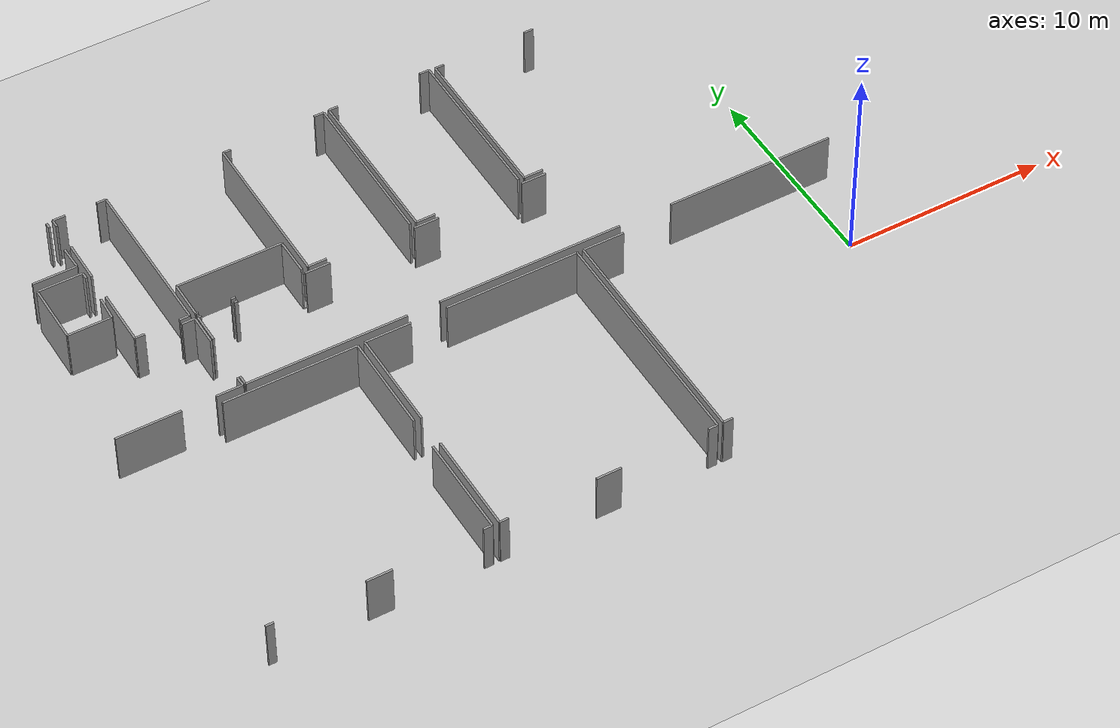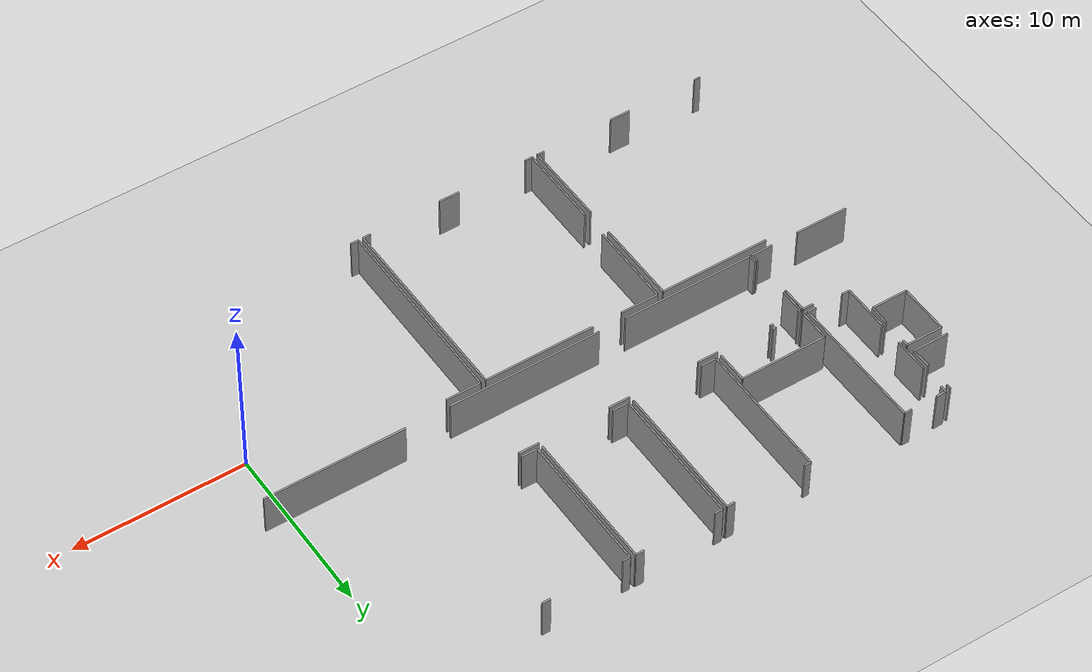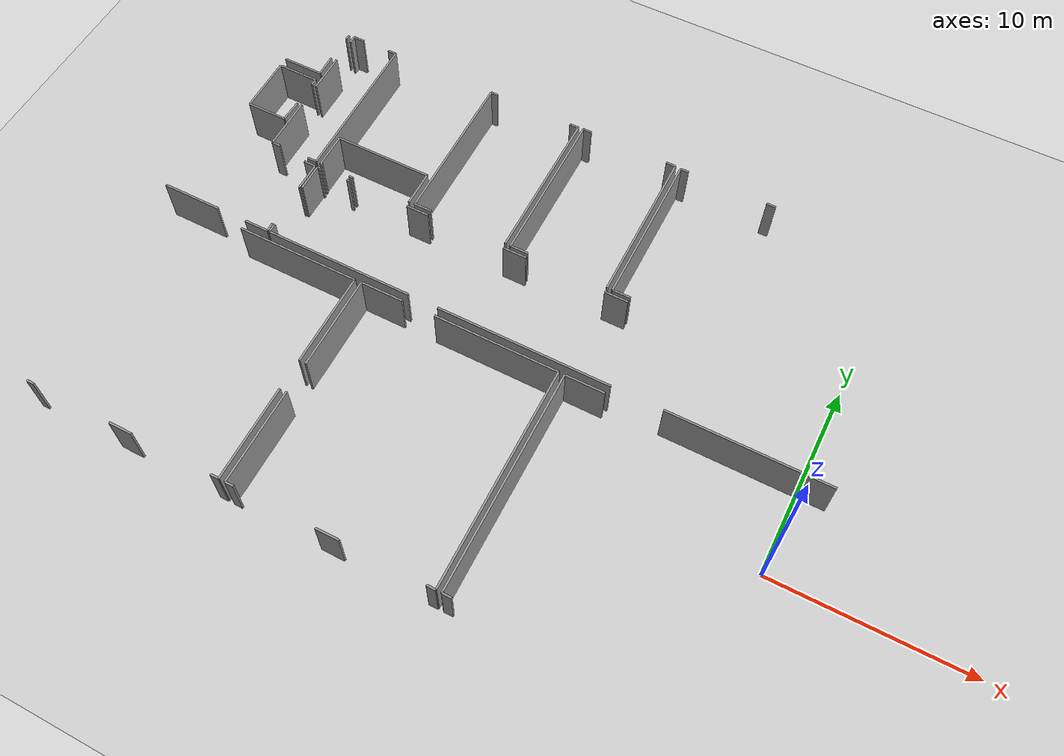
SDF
<sdf version="1.6">
 <world name="default">
  <model name="ground_plane">
   <static>1</static>
   <link name="link">
    <collision name="collision">
     <geometry><plane><normal>0 0 1</normal><size>100 100</size></plane></geometry>
     <surface><friction><ode><mu>100</mu><mu2>50</mu2></ode></friction></surface>
    </collision>
    <visual name="visual">
     <cast_shadows>0</cast_shadows>
     <geometry><plane><normal>0 0 1</normal><size>100 100</size></plane></geometry>
     <material>
      <script><uri>file://media/materials/scripts/gazebo.material</uri><name>Gazebo/Grey</name></script>
     </material>
    </visual>
   </link>
  </model>
  <model name="50037765_PLAN3">
   <static>1</static>
   <link name="Wall_129">
    <collision name="Wall_129_Collision">
     <geometry><box><size>1.28106552116 0.1 2.5</size></box></geometry>
     <pose>0.640532760582 0 1.25 0 0 0</pose>
    </collision>
    <visual name="Wall_129_Visual">
     <pose>0.640532760582 0 1.25 0 0 0</pose>
     <geometry><box><size>1.28106552116 0.1 2.5</size></box></geometry>
     <material>
      <script><uri>file://media/materials/scripts/gazebo.material</uri><name>Gazebo/Grey</name></script>
      <ambient>1 1 1 1</ambient>
     </material>
    </visual>
    <pose>107.835037396 -16.9816164556 0 0 0 3.14159265359</pose>
   </link>
   <link name="Wall_130">
    <collision name="Wall_130_Collision">
     <geometry><box><size>3.10988822449 0.1 2.5</size></box></geometry>
     <pose>1.55494411225 0 1.25 0 0 0</pose>
    </collision>
    <visual name="Wall_130_Visual">
     <pose>1.55494411225 0 1.25 0 0 0</pose>
     <geometry><box><size>3.10988822449 0.1 2.5</size></box></geometry>
     <material>
      <script><uri>file://media/materials/scripts/gazebo.material</uri><name>Gazebo/Grey</name></script>
      <ambient>1 1 1 1</ambient>
     </material>
    </visual>
    <pose>104.94043935 -16.9816164556 0 0 0 3.14159265359</pose>
   </link>
   <link name="Wall_132">
    <collision name="Wall_132_Collision">
     <geometry><box><size>0.639516041914 0.1 2.5</size></box></geometry>
     <pose>0.319758020957 0 1.25 0 0 0</pose>
    </collision>
    <visual name="Wall_132_Visual">
     <pose>0.319758020957 0 1.25 0 0 0</pose>
     <geometry><box><size>0.639516041914 0.1 2.5</size></box></geometry>
     <material>
      <script><uri>file://media/materials/scripts/gazebo.material</uri><name>Gazebo/Grey</name></script>
      <ambient>1 1 1 1</ambient>
     </material>
    </visual>
    <pose>107.173407723 -12.5498160375 0 0 0 0.0</pose>
   </link>
   <link name="Wall_133">
    <collision name="Wall_133_Collision">
     <geometry><box><size>1.51142855327 0.1 2.5</size></box></geometry>
     <pose>0.755714276636 0 1.25 0 0 0</pose>
    </collision>
    <visual name="Wall_133_Visual">
     <pose>0.755714276636 0 1.25 0 0 0</pose>
     <geometry><box><size>1.51142855327 0.1 2.5</size></box></geometry>
     <material>
      <script><uri>file://media/materials/scripts/gazebo.material</uri><name>Gazebo/Grey</name></script>
      <ambient>1 1 1 1</ambient>
     </material>
    </visual>
    <pose>107.812923765 -12.5498160375 0 0 0 -1.57079632679</pose>
   </link>
   <link name="Wall_134">
    <collision name="Wall_134_Collision">
     <geometry><box><size>0.487002205635 0.1 2.5</size></box></geometry>
     <pose>0.243501102817 0 1.25 0 0 0</pose>
    </collision>
    <visual name="Wall_134_Visual">
     <pose>0.243501102817 0 1.25 0 0 0</pose>
     <geometry><box><size>0.487002205635 0.1 2.5</size></box></geometry>
     <material>
      <script><uri>file://media/materials/scripts/gazebo.material</uri><name>Gazebo/Grey</name></script>
      <ambient>1 1 1 1</ambient>
     </material>
    </visual>
    <pose>107.812923765 -16.4951165731 0 0 0 -1.52537304737</pose>
   </link>
   <link name="Wall_135">
    <collision name="Wall_135_Collision">
     <geometry><box><size>0.501750662456 0.1 2.5</size></box></geometry>
     <pose>0.250875331228 0 1.25 0 0 0</pose>
    </collision>
    <visual name="Wall_135_Visual">
     <pose>0.250875331228 0 1.25 0 0 0</pose>
     <geometry><box><size>0.501750662456 0.1 2.5</size></box></geometry>
     <material>
      <script><uri>file://media/materials/scripts/gazebo.material</uri><name>Gazebo/Grey</name></script>
      <ambient>1 1 1 1</ambient>
     </material>
    </visual>
    <pose>107.700576352 -12.2788859305 0 0 0 3.14159265359</pose>
   </link>
   <link name="Wall_136">
    <collision name="Wall_136_Collision">
     <geometry><box><size>0.464894610756 0.1 2.5</size></box></geometry>
     <pose>0.232447305378 0 1.25 0 0 0</pose>
    </collision>
    <visual name="Wall_136_Visual">
     <pose>0.232447305378 0 1.25 0 0 0</pose>
     <geometry><box><size>0.464894610756 0.1 2.5</size></box></geometry>
     <material>
      <script><uri>file://media/materials/scripts/gazebo.material</uri><name>Gazebo/Grey</name></script>
      <ambient>1 1 1 1</ambient>
     </material>
    </visual>
    <pose>105.545641136 -12.2788859305 0 0 0 3.14159265359</pose>
   </link>
   <link name="Wall_137">
    <collision name="Wall_137_Collision">
     <geometry><box><size>2.79549339451 0.1 2.5</size></box></geometry>
     <pose>1.39774669725 0 1.25 0 0 0</pose>
    </collision>
    <visual name="Wall_137_Visual">
     <pose>1.39774669725 0 1.25 0 0 0</pose>
     <geometry><box><size>2.79549339451 0.1 2.5</size></box></geometry>
     <material>
      <script><uri>file://media/materials/scripts/gazebo.material</uri><name>Gazebo/Grey</name></script>
      <ambient>1 1 1 1</ambient>
     </material>
    </visual>
    <pose>105.080746526 -12.2788859305 0 0 0 1.57079632679</pose>
   </link>
   <link name="Wall_138">
    <collision name="Wall_138_Collision">
     <geometry><box><size>2.06365929757 0.1 2.5</size></box></geometry>
     <pose>1.03182964879 0 1.25 0 0 0</pose>
    </collision>
    <visual name="Wall_138_Visual">
     <pose>1.03182964879 0 1.25 0 0 0</pose>
     <geometry><box><size>2.06365929757 0.1 2.5</size></box></geometry>
     <material>
      <script><uri>file://media/materials/scripts/gazebo.material</uri><name>Gazebo/Grey</name></script>
      <ambient>1 1 1 1</ambient>
     </material>
    </visual>
    <pose>105.080746526 -8.08825118035 0 0 0 1.57079632679</pose>
   </link>
   <link name="Wall_139">
    <collision name="Wall_139_Collision">
     <geometry><box><size>0.404399850034 0.1 2.5</size></box></geometry>
     <pose>0.202199925017 0 1.25 0 0 0</pose>
    </collision>
    <visual name="Wall_139_Visual">
     <pose>0.202199925017 0 1.25 0 0 0</pose>
     <geometry><box><size>0.404399850034 0.1 2.5</size></box></geometry>
     <material>
      <script><uri>file://media/materials/scripts/gazebo.material</uri><name>Gazebo/Grey</name></script>
      <ambient>1 1 1 1</ambient>
     </material>
    </visual>
    <pose>105.080746526 -4.59722054534 0 0 0 1.57079632679</pose>
   </link>
   <link name="Wall_140">
    <collision name="Wall_140_Collision">
     <geometry><box><size>0.593255342539 0.1 2.5</size></box></geometry>
     <pose>0.296627671269 0 1.25 0 0 0</pose>
    </collision>
    <visual name="Wall_140_Visual">
     <pose>0.296627671269 0 1.25 0 0 0</pose>
     <geometry><box><size>0.593255342539 0.1 2.5</size></box></geometry>
     <material>
      <script><uri>file://media/materials/scripts/gazebo.material</uri><name>Gazebo/Grey</name></script>
      <ambient>1 1 1 1</ambient>
     </material>
    </visual>
    <pose>105.080746526 -4.19282069531 0 0 0 0.0</pose>
   </link>
   <link name="Wall_141">
    <collision name="Wall_141_Collision">
     <geometry><box><size>0.457015041082 0.1 2.5</size></box></geometry>
     <pose>0.228507520541 0 1.25 0 0 0</pose>
    </collision>
    <visual name="Wall_141_Visual">
     <pose>0.228507520541 0 1.25 0 0 0</pose>
     <geometry><box><size>0.457015041082 0.1 2.5</size></box></geometry>
     <material>
      <script><uri>file://media/materials/scripts/gazebo.material</uri><name>Gazebo/Grey</name></script>
      <ambient>1 1 1 1</ambient>
     </material>
    </visual>
    <pose>107.19882569 -4.19282069531 0 0 0 0.0</pose>
   </link>
   <link name="Wall_142">
    <collision name="Wall_142_Collision">
     <geometry><box><size>8.0861889827 0.1 2.5</size></box></geometry>
     <pose>4.04309449135 0 1.25 0 0 0</pose>
    </collision>
    <visual name="Wall_142_Visual">
     <pose>4.04309449135 0 1.25 0 0 0</pose>
     <geometry><box><size>8.0861889827 0.1 2.5</size></box></geometry>
     <material>
      <script><uri>file://media/materials/scripts/gazebo.material</uri><name>Gazebo/Grey</name></script>
      <ambient>1 1 1 1</ambient>
     </material>
    </visual>
    <pose>107.655840731 -4.19282069531 0 0 0 -1.56526394935</pose>
   </link>
   <link name="Wall_143">
    <collision name="Wall_143_Collision">
     <geometry><box><size>2.13104232727 0.1 2.5</size></box></geometry>
     <pose>1.06552116363 0 1.25 0 0 0</pose>
    </collision>
    <visual name="Wall_143_Visual">
     <pose>1.06552116363 0 1.25 0 0 0</pose>
     <geometry><box><size>2.13104232727 0.1 2.5</size></box></geometry>
     <material>
      <script><uri>file://media/materials/scripts/gazebo.material</uri><name>Gazebo/Grey</name></script>
      <ambient>1 1 1 1</ambient>
     </material>
    </visual>
    <pose>104.795811119 -7.21443232149 0 0 0 3.14159265359</pose>
   </link>
   <link name="Wall_146">
    <collision name="Wall_146_Collision">
     <geometry><box><size>0.286663828327 0.1 2.5</size></box></geometry>
     <pose>0.143331914164 0 1.25 0 0 0</pose>
    </collision>
    <visual name="Wall_146_Visual">
     <pose>0.143331914164 0 1.25 0 0 0</pose>
     <geometry><box><size>0.286663828327 0.1 2.5</size></box></geometry>
     <material>
      <script><uri>file://media/materials/scripts/gazebo.material</uri><name>Gazebo/Grey</name></script>
      <ambient>1 1 1 1</ambient>
     </material>
    </visual>
    <pose>104.767088817 -4.22355101704 0 0 0 -1.57079632679</pose>
   </link>
   <link name="Wall_147">
    <collision name="Wall_147_Collision">
     <geometry><box><size>1.16373483897 0.1 2.5</size></box></geometry>
     <pose>0.581867419483 0 1.25 0 0 0</pose>
    </collision>
    <visual name="Wall_147_Visual">
     <pose>0.581867419483 0 1.25 0 0 0</pose>
     <geometry><box><size>1.16373483897 0.1 2.5</size></box></geometry>
     <material>
      <script><uri>file://media/materials/scripts/gazebo.material</uri><name>Gazebo/Grey</name></script>
      <ambient>1 1 1 1</ambient>
     </material>
    </visual>
    <pose>104.767088817 -6.0510519861 0 0 0 -1.54611268043</pose>
   </link>
   <link name="Wall_148">
    <collision name="Wall_148_Collision">
     <geometry><box><size>2.11197885225 0.1 2.5</size></box></geometry>
     <pose>1.05598942613 0 1.25 0 0 0</pose>
    </collision>
    <visual name="Wall_148_Visual">
     <pose>1.05598942613 0 1.25 0 0 0</pose>
     <geometry><box><size>2.11197885225 0.1 2.5</size></box></geometry>
     <material>
      <script><uri>file://media/materials/scripts/gazebo.material</uri><name>Gazebo/Grey</name></script>
      <ambient>1 1 1 1</ambient>
     </material>
    </visual>
    <pose>104.776747644 -10.6830951458 0 0 0 3.14159265359</pose>
   </link>
   <link name="Wall_149">
    <collision name="Wall_149_Collision">
     <geometry><box><size>2.96220983802 0.1 2.5</size></box></geometry>
     <pose>1.48110491901 0 1.25 0 0 0</pose>
    </collision>
    <visual name="Wall_149_Visual">
     <pose>1.48110491901 0 1.25 0 0 0</pose>
     <geometry><box><size>2.96220983802 0.1 2.5</size></box></geometry>
     <material>
      <script><uri>file://media/materials/scripts/gazebo.material</uri><name>Gazebo/Grey</name></script>
      <ambient>1 1 1 1</ambient>
     </material>
    </visual>
    <pose>102.664768792 -10.6830951458 0 0 0 1.57079632679</pose>
   </link>
   <link name="Wall_150">
    <collision name="Wall_150_Collision">
     <geometry><box><size>2.1691692773 0.1 2.5</size></box></geometry>
     <pose>1.08458463865 0 1.25 0 0 0</pose>
    </collision>
    <visual name="Wall_150_Visual">
     <pose>1.08458463865 0 1.25 0 0 0</pose>
     <geometry><box><size>2.1691692773 0.1 2.5</size></box></geometry>
     <material>
      <script><uri>file://media/materials/scripts/gazebo.material</uri><name>Gazebo/Grey</name></script>
      <ambient>1 1 1 1</ambient>
     </material>
    </visual>
    <pose>102.664768792 -7.72088530778 0 0 0 0.0</pose>
   </link>
   <link name="Wall_151">
    <collision name="Wall_151_Collision">
     <geometry><box><size>0.353563916654 0.1 2.5</size></box></geometry>
     <pose>0.176781958327 0 1.25 0 0 0</pose>
    </collision>
    <visual name="Wall_151_Visual">
     <pose>0.176781958327 0 1.25 0 0 0</pose>
     <geometry><box><size>0.353563916654 0.1 2.5</size></box></geometry>
     <material>
      <script><uri>file://media/materials/scripts/gazebo.material</uri><name>Gazebo/Grey</name></script>
      <ambient>1 1 1 1</ambient>
     </material>
    </visual>
    <pose>104.833938069 -7.72088530778 0 0 0 -1.57079632679</pose>
   </link>
   <link name="Wall_152">
    <collision name="Wall_152_Collision">
     <geometry><box><size>1.18291206941 0.1 2.5</size></box></geometry>
     <pose>0.591456034703 0 1.25 0 0 0</pose>
    </collision>
    <visual name="Wall_152_Visual">
     <pose>0.591456034703 0 1.25 0 0 0</pose>
     <geometry><box><size>1.18291206941 0.1 2.5</size></box></geometry>
     <material>
      <script><uri>file://media/materials/scripts/gazebo.material</uri><name>Gazebo/Grey</name></script>
      <ambient>1 1 1 1</ambient>
     </material>
    </visual>
    <pose>104.833938069 -9.5015663822 0 0 0 -1.61916232958</pose>
   </link>
   <link name="Wall_153">
    <collision name="Wall_153_Collision">
     <geometry><box><size>0.428038559055 0.1 2.5</size></box></geometry>
     <pose>0.214019279528 0 1.25 0 0 0</pose>
    </collision>
    <visual name="Wall_153_Visual">
     <pose>0.214019279528 0 1.25 0 0 0</pose>
     <geometry><box><size>0.428038559055 0.1 2.5</size></box></geometry>
     <material>
      <script><uri>file://media/materials/scripts/gazebo.material</uri><name>Gazebo/Grey</name></script>
      <ambient>1 1 1 1</ambient>
     </material>
    </visual>
    <pose>113.094268884 -28.9847428655 0 0 0 3.14159265359</pose>
   </link>
   <link name="Wall_154">
    <collision name="Wall_154_Collision">
     <geometry><box><size>1.21294537044 0.1 2.5</size></box></geometry>
     <pose>0.606472685218 0 1.25 0 0 0</pose>
    </collision>
    <visual name="Wall_154_Visual">
     <pose>0.606472685218 0 1.25 0 0 0</pose>
     <geometry><box><size>1.21294537044 0.1 2.5</size></box></geometry>
     <material>
      <script><uri>file://media/materials/scripts/gazebo.material</uri><name>Gazebo/Grey</name></script>
      <ambient>1 1 1 1</ambient>
     </material>
    </visual>
    <pose>108.445068597 -28.9847428655 0 0 0 3.14159265359</pose>
   </link>
   <link name="Wall_155">
    <collision name="Wall_155_Collision">
     <geometry><box><size>0.373898290006 0.1 2.5</size></box></geometry>
     <pose>0.186949145003 0 1.25 0 0 0</pose>
    </collision>
    <visual name="Wall_155_Visual">
     <pose>0.186949145003 0 1.25 0 0 0</pose>
     <geometry><box><size>0.373898290006 0.1 2.5</size></box></geometry>
     <material>
      <script><uri>file://media/materials/scripts/gazebo.material</uri><name>Gazebo/Grey</name></script>
      <ambient>1 1 1 1</ambient>
     </material>
    </visual>
    <pose>103.019349427 -28.9847428655 0 0 0 3.14159265359</pose>
   </link>
   <link name="Wall_158">
    <collision name="Wall_158_Collision">
     <geometry><box><size>6.4615013122 0.1 2.5</size></box></geometry>
     <pose>3.2307506561 0 1.25 0 0 0</pose>
    </collision>
    <visual name="Wall_158_Visual">
     <pose>3.2307506561 0 1.25 0 0 0</pose>
     <geometry><box><size>6.4615013122 0.1 2.5</size></box></geometry>
     <material>
      <script><uri>file://media/materials/scripts/gazebo.material</uri><name>Gazebo/Grey</name></script>
      <ambient>1 1 1 1</ambient>
     </material>
    </visual>
    <pose>106.61090812 -17.4485445037 0 0 0 0.0</pose>
   </link>
   <link name="Wall_159">
    <collision name="Wall_159_Collision">
     <geometry><box><size>4.94379452116 0.1 2.5</size></box></geometry>
     <pose>2.47189726058 0 1.25 0 0 0</pose>
    </collision>
    <visual name="Wall_159_Visual">
     <pose>2.47189726058 0 1.25 0 0 0</pose>
     <geometry><box><size>4.94379452116 0.1 2.5</size></box></geometry>
     <material>
      <script><uri>file://media/materials/scripts/gazebo.material</uri><name>Gazebo/Grey</name></script>
      <ambient>1 1 1 1</ambient>
     </material>
    </visual>
    <pose>113.072409433 -17.4485445037 0 0 0 -1.57079632679</pose>
   </link>
   <link name="Wall_160">
    <collision name="Wall_160_Collision">
     <geometry><box><size>4.9547724668 0.1 2.5</size></box></geometry>
     <pose>2.4773862334 0 1.25 0 0 0</pose>
    </collision>
    <visual name="Wall_160_Visual">
     <pose>2.4773862334 0 1.25 0 0 0</pose>
     <geometry><box><size>4.9547724668 0.1 2.5</size></box></geometry>
     <material>
      <script><uri>file://media/materials/scripts/gazebo.material</uri><name>Gazebo/Grey</name></script>
      <ambient>1 1 1 1</ambient>
     </material>
    </visual>
    <pose>113.072409433 -24.0300186187 0 0 0 -1.56638451527</pose>
   </link>
   <link name="Wall_170">
    <collision name="Wall_170_Collision">
     <geometry><box><size>1.22082494011 0.1 2.5</size></box></geometry>
     <pose>0.610412470054 0 1.25 0 0 0</pose>
    </collision>
    <visual name="Wall_170_Visual">
     <pose>0.610412470054 0 1.25 0 0 0</pose>
     <geometry><box><size>1.22082494011 0.1 2.5</size></box></geometry>
     <material>
      <script><uri>file://media/materials/scripts/gazebo.material</uri><name>Gazebo/Grey</name></script>
      <ambient>1 1 1 1</ambient>
     </material>
    </visual>
    <pose>125.136030603 -12.5559926034 0 0 0 3.14159265359</pose>
   </link>
   <link name="Wall_171">
    <collision name="Wall_171_Collision">
     <geometry><box><size>1.22997540812 0.1 2.5</size></box></geometry>
     <pose>0.614987704059 0 1.25 0 0 0</pose>
    </collision>
    <visual name="Wall_171_Visual">
     <pose>0.614987704059 0 1.25 0 0 0</pose>
     <geometry><box><size>1.22997540812 0.1 2.5</size></box></geometry>
     <material>
      <script><uri>file://media/materials/scripts/gazebo.material</uri><name>Gazebo/Grey</name></script>
      <ambient>1 1 1 1</ambient>
     </material>
    </visual>
    <pose>119.732425065 -12.5559926034 0 0 0 3.14159265359</pose>
   </link>
   <link name="Wall_172">
    <collision name="Wall_172_Collision">
     <geometry><box><size>1.2063366991 0.1 2.5</size></box></geometry>
     <pose>0.603168349548 0 1.25 0 0 0</pose>
    </collision>
    <visual name="Wall_172_Visual">
     <pose>0.603168349548 0 1.25 0 0 0</pose>
     <geometry><box><size>1.2063366991 0.1 2.5</size></box></geometry>
     <material>
      <script><uri>file://media/materials/scripts/gazebo.material</uri><name>Gazebo/Grey</name></script>
      <ambient>1 1 1 1</ambient>
     </material>
    </visual>
    <pose>114.338224174 -12.5559926034 0 0 0 3.14159265359</pose>
   </link>
   <link name="Wall_173">
    <collision name="Wall_173_Collision">
     <geometry><box><size>0.176909048161 0.1 2.5</size></box></geometry>
     <pose>0.0884545240803 0 1.25 0 0 0</pose>
    </collision>
    <visual name="Wall_173_Visual">
     <pose>0.0884545240803 0 1.25 0 0 0</pose>
     <geometry><box><size>0.176909048161 0.1 2.5</size></box></geometry>
     <material>
      <script><uri>file://media/materials/scripts/gazebo.material</uri><name>Gazebo/Grey</name></script>
      <ambient>1 1 1 1</ambient>
     </material>
    </visual>
    <pose>109.857036646 -12.5559926034 0 0 0 3.14159265359</pose>
   </link>
   <link name="Wall_174">
    <collision name="Wall_174_Collision">
     <geometry><box><size>0.151745261138 0.1 2.5</size></box></geometry>
     <pose>0.0758726305689 0 1.25 0 0 0</pose>
    </collision>
    <visual name="Wall_174_Visual">
     <pose>0.0758726305689 0 1.25 0 0 0</pose>
     <geometry><box><size>0.151745261138 0.1 2.5</size></box></geometry>
     <material>
      <script><uri>file://media/materials/scripts/gazebo.material</uri><name>Gazebo/Grey</name></script>
      <ambient>1 1 1 1</ambient>
     </material>
    </visual>
    <pose>108.100400968 -12.5559926034 0 0 0 3.14159265359</pose>
   </link>
   <link name="Wall_175">
    <collision name="Wall_175_Collision">
     <geometry><box><size>1.45596654996 0.1 2.5</size></box></geometry>
     <pose>0.727983274978 0 1.25 0 0 0</pose>
    </collision>
    <visual name="Wall_175_Visual">
     <pose>0.727983274978 0 1.25 0 0 0</pose>
     <geometry><box><size>1.45596654996 0.1 2.5</size></box></geometry>
     <material>
      <script><uri>file://media/materials/scripts/gazebo.material</uri><name>Gazebo/Grey</name></script>
      <ambient>1 1 1 1</ambient>
     </material>
    </visual>
    <pose>107.948655707 -12.5559926034 0 0 0 -1.57079632679</pose>
   </link>
   <link name="Wall_176">
    <collision name="Wall_176_Collision">
     <geometry><box><size>0.479637031436 0.1 2.5</size></box></geometry>
     <pose>0.239818515718 0 1.25 0 0 0</pose>
    </collision>
    <visual name="Wall_176_Visual">
     <pose>0.239818515718 0 1.25 0 0 0</pose>
     <geometry><box><size>0.479637031436 0.1 2.5</size></box></geometry>
     <material>
      <script><uri>file://media/materials/scripts/gazebo.material</uri><name>Gazebo/Grey</name></script>
      <ambient>1 1 1 1</ambient>
     </material>
    </visual>
    <pose>107.948655707 -16.5027419632 0 0 0 -1.57079632679</pose>
   </link>
   <link name="Wall_177">
    <collision name="Wall_177_Collision">
     <geometry><box><size>7.7845064784 0.1 2.5</size></box></geometry>
     <pose>3.8922532392 0 1.25 0 0 0</pose>
    </collision>
    <visual name="Wall_177_Visual">
     <pose>3.8922532392 0 1.25 0 0 0</pose>
     <geometry><box><size>7.7845064784 0.1 2.5</size></box></geometry>
     <material>
      <script><uri>file://media/materials/scripts/gazebo.material</uri><name>Gazebo/Grey</name></script>
      <ambient>1 1 1 1</ambient>
     </material>
    </visual>
    <pose>107.948655707 -16.9823789946 0 0 0 0.0</pose>
   </link>
   <link name="Wall_178">
    <collision name="Wall_178_Collision">
     <geometry><box><size>8.98118435016 0.1 2.5</size></box></geometry>
     <pose>4.49059217508 0 1.25 0 0 0</pose>
    </collision>
    <visual name="Wall_178_Visual">
     <pose>4.49059217508 0 1.25 0 0 0</pose>
     <geometry><box><size>8.98118435016 0.1 2.5</size></box></geometry>
     <material>
      <script><uri>file://media/materials/scripts/gazebo.material</uri><name>Gazebo/Grey</name></script>
      <ambient>1 1 1 1</ambient>
     </material>
    </visual>
    <pose>117.33195229 -16.9823789946 0 0 0 0.0</pose>
   </link>
   <link name="Wall_179">
    <collision name="Wall_179_Collision">
     <geometry><box><size>8.21788281046 0.1 2.5</size></box></geometry>
     <pose>4.10894140523 0 1.25 0 0 0</pose>
    </collision>
    <visual name="Wall_179_Visual">
     <pose>4.10894140523 0 1.25 0 0 0</pose>
     <geometry><box><size>8.21788281046 0.1 2.5</size></box></geometry>
     <material>
      <script><uri>file://media/materials/scripts/gazebo.material</uri><name>Gazebo/Grey</name></script>
      <ambient>1 1 1 1</ambient>
     </material>
    </visual>
    <pose>128.932966467 -16.9823789946 0 0 0 0.0</pose>
   </link>
   <link name="Wall_184">
    <collision name="Wall_184_Collision">
     <geometry><box><size>0.210206584524 0.1 2.5</size></box></geometry>
     <pose>0.105103292262 0 1.25 0 0 0</pose>
    </collision>
    <visual name="Wall_184_Visual">
     <pose>0.105103292262 0 1.25 0 0 0</pose>
     <geometry><box><size>0.210206584524 0.1 2.5</size></box></geometry>
     <material>
      <script><uri>file://media/materials/scripts/gazebo.material</uri><name>Gazebo/Grey</name></script>
      <ambient>1 1 1 1</ambient>
     </material>
    </visual>
    <pose>109.86974563 -12.3059306471 0 0 0 3.14159265359</pose>
   </link>
   <link name="Wall_185">
    <collision name="Wall_185_Collision">
     <geometry><box><size>0.108026358431 0.1 2.5</size></box></geometry>
     <pose>0.0540131792157 0 1.25 0 0 0</pose>
    </collision>
    <visual name="Wall_185_Visual">
     <pose>0.0540131792157 0 1.25 0 0 0</pose>
     <geometry><box><size>0.108026358431 0.1 2.5</size></box></geometry>
     <material>
      <script><uri>file://media/materials/scripts/gazebo.material</uri><name>Gazebo/Grey</name></script>
      <ambient>1 1 1 1</ambient>
     </material>
    </visual>
    <pose>108.079558236 -12.3059306471 0 0 0 3.14159265359</pose>
   </link>
   <link name="Wall_186">
    <collision name="Wall_186_Collision">
     <geometry><box><size>1.85007212348 0.1 2.5</size></box></geometry>
     <pose>0.92503606174 0 1.25 0 0 0</pose>
    </collision>
    <visual name="Wall_186_Visual">
     <pose>0.92503606174 0 1.25 0 0 0</pose>
     <geometry><box><size>1.85007212348 0.1 2.5</size></box></geometry>
     <material>
      <script><uri>file://media/materials/scripts/gazebo.material</uri><name>Gazebo/Grey</name></script>
      <ambient>1 1 1 1</ambient>
     </material>
    </visual>
    <pose>107.971531877 -12.3059306471 0 0 0 1.57079632679</pose>
   </link>
   <link name="Wall_187">
    <collision name="Wall_187_Collision">
     <geometry><box><size>5.12070356932 0.1 2.5</size></box></geometry>
     <pose>2.56035178466 0 1.25 0 0 0</pose>
    </collision>
    <visual name="Wall_187_Visual">
     <pose>2.56035178466 0 1.25 0 0 0</pose>
     <geometry><box><size>5.12070356932 0.1 2.5</size></box></geometry>
     <material>
      <script><uri>file://media/materials/scripts/gazebo.material</uri><name>Gazebo/Grey</name></script>
      <ambient>1 1 1 1</ambient>
     </material>
    </visual>
    <pose>107.971531877 -10.4558585236 0 0 0 0.0</pose>
   </link>
   <link name="Wall_188">
    <collision name="Wall_188_Collision">
     <geometry><box><size>1.85011404627 0.1 2.5</size></box></geometry>
     <pose>0.925057023136 0 1.25 0 0 0</pose>
    </collision>
    <visual name="Wall_188_Visual">
     <pose>0.925057023136 0 1.25 0 0 0</pose>
     <geometry><box><size>1.85011404627 0.1 2.5</size></box></geometry>
     <material>
      <script><uri>file://media/materials/scripts/gazebo.material</uri><name>Gazebo/Grey</name></script>
      <ambient>1 1 1 1</ambient>
     </material>
    </visual>
    <pose>113.092235447 -10.4558585236 0 0 0 -1.56406436463</pose>
   </link>
   <link name="Wall_189">
    <collision name="Wall_189_Collision">
     <geometry><box><size>0.900812739485 0.1 2.5</size></box></geometry>
     <pose>0.450406369742 0 1.25 0 0 0</pose>
    </collision>
    <visual name="Wall_189_Visual">
     <pose>0.450406369742 0 1.25 0 0 0</pose>
     <geometry><box><size>0.900812739485 0.1 2.5</size></box></geometry>
     <material>
      <script><uri>file://media/materials/scripts/gazebo.material</uri><name>Gazebo/Grey</name></script>
      <ambient>1 1 1 1</ambient>
     </material>
    </visual>
    <pose>114.323481753 -12.2707521812 0 0 0 3.14159265359</pose>
   </link>
   <link name="Wall_190">
    <collision name="Wall_190_Collision">
     <geometry><box><size>8.06275695976 0.1 2.5</size></box></geometry>
     <pose>4.03137847988 0 1.25 0 0 0</pose>
    </collision>
    <visual name="Wall_190_Visual">
     <pose>4.03137847988 0 1.25 0 0 0</pose>
     <geometry><box><size>8.06275695976 0.1 2.5</size></box></geometry>
     <material>
      <script><uri>file://media/materials/scripts/gazebo.material</uri><name>Gazebo/Grey</name></script>
      <ambient>1 1 1 1</ambient>
     </material>
    </visual>
    <pose>113.422669014 -12.2707521812 0 0 0 1.57079632679</pose>
   </link>
   <link name="Wall_191">
    <collision name="Wall_191_Collision">
     <geometry><box><size>0.37771098501 0.1 2.5</size></box></geometry>
     <pose>0.188855492505 0 1.25 0 0 0</pose>
    </collision>
    <visual name="Wall_191_Visual">
     <pose>0.188855492505 0 1.25 0 0 0</pose>
     <geometry><box><size>0.37771098501 0.1 2.5</size></box></geometry>
     <material>
      <script><uri>file://media/materials/scripts/gazebo.material</uri><name>Gazebo/Grey</name></script>
      <ambient>1 1 1 1</ambient>
     </material>
    </visual>
    <pose>113.422669014 -4.20799522142 0 0 0 0.0</pose>
   </link>
   <link name="Wall_192">
    <collision name="Wall_192_Collision">
     <geometry><box><size>0.483449726439 0.1 2.5</size></box></geometry>
     <pose>0.24172486322 0 1.25 0 0 0</pose>
    </collision>
    <visual name="Wall_192_Visual">
     <pose>0.24172486322 0 1.25 0 0 0</pose>
     <geometry><box><size>0.483449726439 0.1 2.5</size></box></geometry>
     <material>
      <script><uri>file://media/materials/scripts/gazebo.material</uri><name>Gazebo/Grey</name></script>
      <ambient>1 1 1 1</ambient>
     </material>
    </visual>
    <pose>118.006290947 -4.20799522142 0 0 0 0.0</pose>
   </link>
   <link name="Wall_193">
    <collision name="Wall_193_Collision">
     <geometry><box><size>8.06278659197 0.1 2.5</size></box></geometry>
     <pose>4.03139329599 0 1.25 0 0 0</pose>
    </collision>
    <visual name="Wall_193_Visual">
     <pose>4.03139329599 0 1.25 0 0 0</pose>
     <geometry><box><size>8.06278659197 0.1 2.5</size></box></geometry>
     <material>
      <script><uri>file://media/materials/scripts/gazebo.material</uri><name>Gazebo/Grey</name></script>
      <ambient>1 1 1 1</ambient>
     </material>
    </visual>
    <pose>118.489740673 -4.20799522142 0 0 0 -1.57350748353</pose>
   </link>
   <link name="Wall_194">
    <collision name="Wall_194_Collision">
     <geometry><box><size>0.944531642191 0.1 2.5</size></box></geometry>
     <pose>0.472265821096 0 1.25 0 0 0</pose>
    </collision>
    <visual name="Wall_194_Visual">
     <pose>0.472265821096 0 1.25 0 0 0</pose>
     <geometry><box><size>0.944531642191 0.1 2.5</size></box></geometry>
     <material>
      <script><uri>file://media/materials/scripts/gazebo.material</uri><name>Gazebo/Grey</name></script>
      <ambient>1 1 1 1</ambient>
     </material>
    </visual>
    <pose>119.700652606 -12.2927387224 0 0 0 3.14159265359</pose>
   </link>
   <link name="Wall_195">
    <collision name="Wall_195_Collision">
     <geometry><box><size>8.1125507565 0.1 2.5</size></box></geometry>
     <pose>4.05627537825 0 1.25 0 0 0</pose>
    </collision>
    <visual name="Wall_195_Visual">
     <pose>4.05627537825 0 1.25 0 0 0</pose>
     <geometry><box><size>8.1125507565 0.1 2.5</size></box></geometry>
     <material>
      <script><uri>file://media/materials/scripts/gazebo.material</uri><name>Gazebo/Grey</name></script>
      <ambient>1 1 1 1</ambient>
     </material>
    </visual>
    <pose>118.756120964 -12.2927387224 0 0 0 1.57079632679</pose>
   </link>
   <link name="Wall_196">
    <collision name="Wall_196_Collision">
     <geometry><box><size>0.452439807078 0.1 2.5</size></box></geometry>
     <pose>0.226219903539 0 1.25 0 0 0</pose>
    </collision>
    <visual name="Wall_196_Visual">
     <pose>0.226219903539 0 1.25 0 0 0</pose>
     <geometry><box><size>0.452439807078 0.1 2.5</size></box></geometry>
     <material>
      <script><uri>file://media/materials/scripts/gazebo.material</uri><name>Gazebo/Grey</name></script>
      <ambient>1 1 1 1</ambient>
     </material>
    </visual>
    <pose>118.756120964 -4.18018796586 0 0 0 0.0</pose>
   </link>
   <link name="Wall_197">
    <collision name="Wall_197_Collision">
     <geometry><box><size>0.496921248785 0.1 2.5</size></box></geometry>
     <pose>0.248460624392 0 1.25 0 0 0</pose>
    </collision>
    <visual name="Wall_197_Visual">
     <pose>0.248460624392 0 1.25 0 0 0</pose>
     <geometry><box><size>0.496921248785 0.1 2.5</size></box></geometry>
     <material>
      <script><uri>file://media/materials/scripts/gazebo.material</uri><name>Gazebo/Grey</name></script>
      <ambient>1 1 1 1</ambient>
     </material>
    </visual>
    <pose>123.400491838 -4.18018796586 0 0 0 0.0</pose>
   </link>
   <link name="Wall_198">
    <collision name="Wall_198_Collision">
     <geometry><box><size>8.11257753099 0.1 2.5</size></box></geometry>
     <pose>4.0562887655 0 1.25 0 0 0</pose>
    </collision>
    <visual name="Wall_198_Visual">
     <pose>4.0562887655 0 1.25 0 0 0</pose>
     <geometry><box><size>8.11257753099 0.1 2.5</size></box></geometry>
     <material>
      <script><uri>file://media/materials/scripts/gazebo.material</uri><name>Gazebo/Grey</name></script>
      <ambient>1 1 1 1</ambient>
     </material>
    </visual>
    <pose>123.897413086 -4.18018796586 0 0 0 -1.56822713648</pose>
   </link>
   <link name="Wall_199">
    <collision name="Wall_199_Collision">
     <geometry><box><size>0.947835977861 0.1 2.5</size></box></geometry>
     <pose>0.47391798893 0 1.25 0 0 0</pose>
    </collision>
    <visual name="Wall_199_Visual">
     <pose>0.47391798893 0 1.25 0 0 0</pose>
     <geometry><box><size>0.947835977861 0.1 2.5</size></box></geometry>
     <material>
      <script><uri>file://media/materials/scripts/gazebo.material</uri><name>Gazebo/Grey</name></script>
      <ambient>1 1 1 1</ambient>
     </material>
    </visual>
    <pose>125.147977048 -12.2927387224 0 0 0 3.14159265359</pose>
   </link>
   <link name="Wall_200">
    <collision name="Wall_200_Collision">
     <geometry><box><size>8.0787448608 0.1 2.5</size></box></geometry>
     <pose>4.0393724304 0 1.25 0 0 0</pose>
    </collision>
    <visual name="Wall_200_Visual">
     <pose>4.0393724304 0 1.25 0 0 0</pose>
     <geometry><box><size>8.0787448608 0.1 2.5</size></box></geometry>
     <material>
      <script><uri>file://media/materials/scripts/gazebo.material</uri><name>Gazebo/Grey</name></script>
      <ambient>1 1 1 1</ambient>
     </material>
    </visual>
    <pose>124.20014107 -12.2927387224 0 0 0 1.57079632679</pose>
   </link>
   <link name="Wall_201">
    <collision name="Wall_201_Collision">
     <geometry><box><size>0.432867972727 0.1 2.5</size></box></geometry>
     <pose>0.216433986363 0 1.25 0 0 0</pose>
    </collision>
    <visual name="Wall_201_Visual">
     <pose>0.216433986363 0 1.25 0 0 0</pose>
     <geometry><box><size>0.432867972727 0.1 2.5</size></box></geometry>
     <material>
      <script><uri>file://media/materials/scripts/gazebo.material</uri><name>Gazebo/Grey</name></script>
      <ambient>1 1 1 1</ambient>
     </material>
    </visual>
    <pose>124.20014107 -4.21399386156 0 0 0 0.0</pose>
   </link>
   <link name="Wall_202">
    <collision name="Wall_202_Collision">
     <geometry><box><size>0.487262421443 0.1 2.5</size></box></geometry>
     <pose>0.243631210721 0 1.25 0 0 0</pose>
    </collision>
    <visual name="Wall_202_Visual">
     <pose>0.243631210721 0 1.25 0 0 0</pose>
     <geometry><box><size>0.487262421443 0.1 2.5</size></box></geometry>
     <material>
      <script><uri>file://media/materials/scripts/gazebo.material</uri><name>Gazebo/Grey</name></script>
      <ambient>1 1 1 1</ambient>
     </material>
    </visual>
    <pose>128.827990265 -4.21399386156 0 0 0 0.0</pose>
   </link>
   <link name="Wall_283">
    <collision name="Wall_283_Collision">
     <geometry><box><size>0.469724024427 0.1 2.5</size></box></geometry>
     <pose>0.234862012213 0 1.25 0 0 0</pose>
    </collision>
    <visual name="Wall_283_Visual">
     <pose>0.234862012213 0 1.25 0 0 0</pose>
     <geometry><box><size>0.469724024427 0.1 2.5</size></box></geometry>
     <material>
      <script><uri>file://media/materials/scripts/gazebo.material</uri><name>Gazebo/Grey</name></script>
      <ambient>1 1 1 1</ambient>
     </material>
    </visual>
    <pose>124.674440328 -28.9819468892 0 0 0 3.14159265359</pose>
   </link>
   <link name="Wall_284">
    <collision name="Wall_284_Collision">
     <geometry><box><size>11.5555160165 0.1 2.5</size></box></geometry>
     <pose>5.77775800825 0 1.25 0 0 0</pose>
    </collision>
    <visual name="Wall_284_Visual">
     <pose>5.77775800825 0 1.25 0 0 0</pose>
     <geometry><box><size>11.5555160165 0.1 2.5</size></box></geometry>
     <material>
      <script><uri>file://media/materials/scripts/gazebo.material</uri><name>Gazebo/Grey</name></script>
      <ambient>1 1 1 1</ambient>
     </material>
    </visual>
    <pose>124.204716304 -28.9819468892 0 0 0 1.57079632679</pose>
   </link>
   <link name="Wall_285">
    <collision name="Wall_285_Collision">
     <geometry><box><size>2.03750420985 0.1 2.5</size></box></geometry>
     <pose>1.01875210493 0 1.25 0 0 0</pose>
    </collision>
    <visual name="Wall_285_Visual">
     <pose>1.01875210493 0 1.25 0 0 0</pose>
     <geometry><box><size>2.03750420985 0.1 2.5</size></box></geometry>
     <material>
      <script><uri>file://media/materials/scripts/gazebo.material</uri><name>Gazebo/Grey</name></script>
      <ambient>1 1 1 1</ambient>
     </material>
    </visual>
    <pose>124.204716304 -17.4264308727 0 0 0 0.0</pose>
   </link>
   <link name="Wall_288">
    <collision name="Wall_288_Collision">
     <geometry><box><size>0.454219064746 0.1 2.5</size></box></geometry>
     <pose>0.227109532373 0 1.25 0 0 0</pose>
    </collision>
    <visual name="Wall_288_Visual">
     <pose>0.227109532373 0 1.25 0 0 0</pose>
     <geometry><box><size>0.454219064746 0.1 2.5</size></box></geometry>
     <material>
      <script><uri>file://media/materials/scripts/gazebo.material</uri><name>Gazebo/Grey</name></script>
      <ambient>1 1 1 1</ambient>
     </material>
    </visual>
    <pose>123.922068514 -28.9870304825 0 0 0 3.14159265359</pose>
   </link>
   <link name="Wall_289">
    <collision name="Wall_289_Collision">
     <geometry><box><size>1.2086243161 0.1 2.5</size></box></geometry>
     <pose>0.604312158049 0 1.25 0 0 0</pose>
    </collision>
    <visual name="Wall_289_Visual">
     <pose>0.604312158049 0 1.25 0 0 0</pose>
     <geometry><box><size>1.2086243161 0.1 2.5</size></box></geometry>
     <material>
      <script><uri>file://media/materials/scripts/gazebo.material</uri><name>Gazebo/Grey</name></script>
      <ambient>1 1 1 1</ambient>
     </material>
    </visual>
    <pose>119.237028894 -28.9870304825 0 0 0 3.14159265359</pose>
   </link>
   <link name="Wall_290">
    <collision name="Wall_290_Collision">
     <geometry><box><size>0.439476644066 0.1 2.5</size></box></geometry>
     <pose>0.219738322033 0 1.25 0 0 0</pose>
    </collision>
    <visual name="Wall_290_Visual">
     <pose>0.219738322033 0 1.25 0 0 0</pose>
     <geometry><box><size>0.439476644066 0.1 2.5</size></box></geometry>
     <material>
      <script><uri>file://media/materials/scripts/gazebo.material</uri><name>Gazebo/Grey</name></script>
      <ambient>1 1 1 1</ambient>
     </material>
    </visual>
    <pose>113.863416556 -28.9870304825 0 0 0 3.14159265359</pose>
   </link>
   <link name="Wall_291">
    <collision name="Wall_291_Collision">
     <geometry><box><size>4.97073756585 0.1 2.5</size></box></geometry>
     <pose>2.48536878292 0 1.25 0 0 0</pose>
    </collision>
    <visual name="Wall_291_Visual">
     <pose>2.48536878292 0 1.25 0 0 0</pose>
     <geometry><box><size>4.97073756585 0.1 2.5</size></box></geometry>
     <material>
      <script><uri>file://media/materials/scripts/gazebo.material</uri><name>Gazebo/Grey</name></script>
      <ambient>1 1 1 1</ambient>
     </material>
    </visual>
    <pose>113.423939912 -28.9870304825 0 0 0 1.57079632679</pose>
   </link>
   <link name="Wall_292">
    <collision name="Wall_292_Collision">
     <geometry><box><size>4.98420908819 0.1 2.5</size></box></geometry>
     <pose>2.4921045441 0 1.25 0 0 0</pose>
    </collision>
    <visual name="Wall_292_Visual">
     <pose>2.4921045441 0 1.25 0 0 0</pose>
     <geometry><box><size>4.98420908819 0.1 2.5</size></box></geometry>
     <material>
      <script><uri>file://media/materials/scripts/gazebo.material</uri><name>Gazebo/Grey</name></script>
      <ambient>1 1 1 1</ambient>
     </material>
    </visual>
    <pose>113.423939912 -22.4088607032 0 0 0 1.57079632679</pose>
   </link>
   <link name="Wall_293">
    <collision name="Wall_293_Collision">
     <geometry><box><size>2.24186466204 0.1 2.5</size></box></geometry>
     <pose>1.12093233102 0 1.25 0 0 0</pose>
    </collision>
    <visual name="Wall_293_Visual">
     <pose>1.12093233102 0 1.25 0 0 0</pose>
     <geometry><box><size>2.24186466204 0.1 2.5</size></box></geometry>
     <material>
      <script><uri>file://media/materials/scripts/gazebo.material</uri><name>Gazebo/Grey</name></script>
      <ambient>1 1 1 1</ambient>
     </material>
    </visual>
    <pose>113.423939912 -17.424651615 0 0 0 0.0</pose>
   </link>
   <link name="Wall_294">
    <collision name="Wall_294_Collision">
     <geometry><box><size>6.49098615356 0.1 2.5</size></box></geometry>
     <pose>3.24549307678 0 1.25 0 0 0</pose>
    </collision>
    <visual name="Wall_294_Visual">
     <pose>3.24549307678 0 1.25 0 0 0</pose>
     <geometry><box><size>6.49098615356 0.1 2.5</size></box></geometry>
     <material>
      <script><uri>file://media/materials/scripts/gazebo.material</uri><name>Gazebo/Grey</name></script>
      <ambient>1 1 1 1</ambient>
     </material>
    </visual>
    <pose>117.405918574 -17.424651615 0 0 0 0.0</pose>
   </link>
   <link name="Wall_295">
    <collision name="Wall_295_Collision">
     <geometry><box><size>11.5624062501 0.1 2.5</size></box></geometry>
     <pose>5.78120312504 0 1.25 0 0 0</pose>
    </collision>
    <visual name="Wall_295_Visual">
     <pose>5.78120312504 0 1.25 0 0 0</pose>
     <geometry><box><size>11.5624062501 0.1 2.5</size></box></geometry>
     <material>
      <script><uri>file://media/materials/scripts/gazebo.material</uri><name>Gazebo/Grey</name></script>
      <ambient>1 1 1 1</ambient>
     </material>
    </visual>
    <pose>123.896904727 -17.424651615 0 0 0 -1.5686199799</pose>
   </link>
   <pose>-135.75 21.1468211655 0 0 0 0</pose>
  </model>
 </world>
</sdf>
